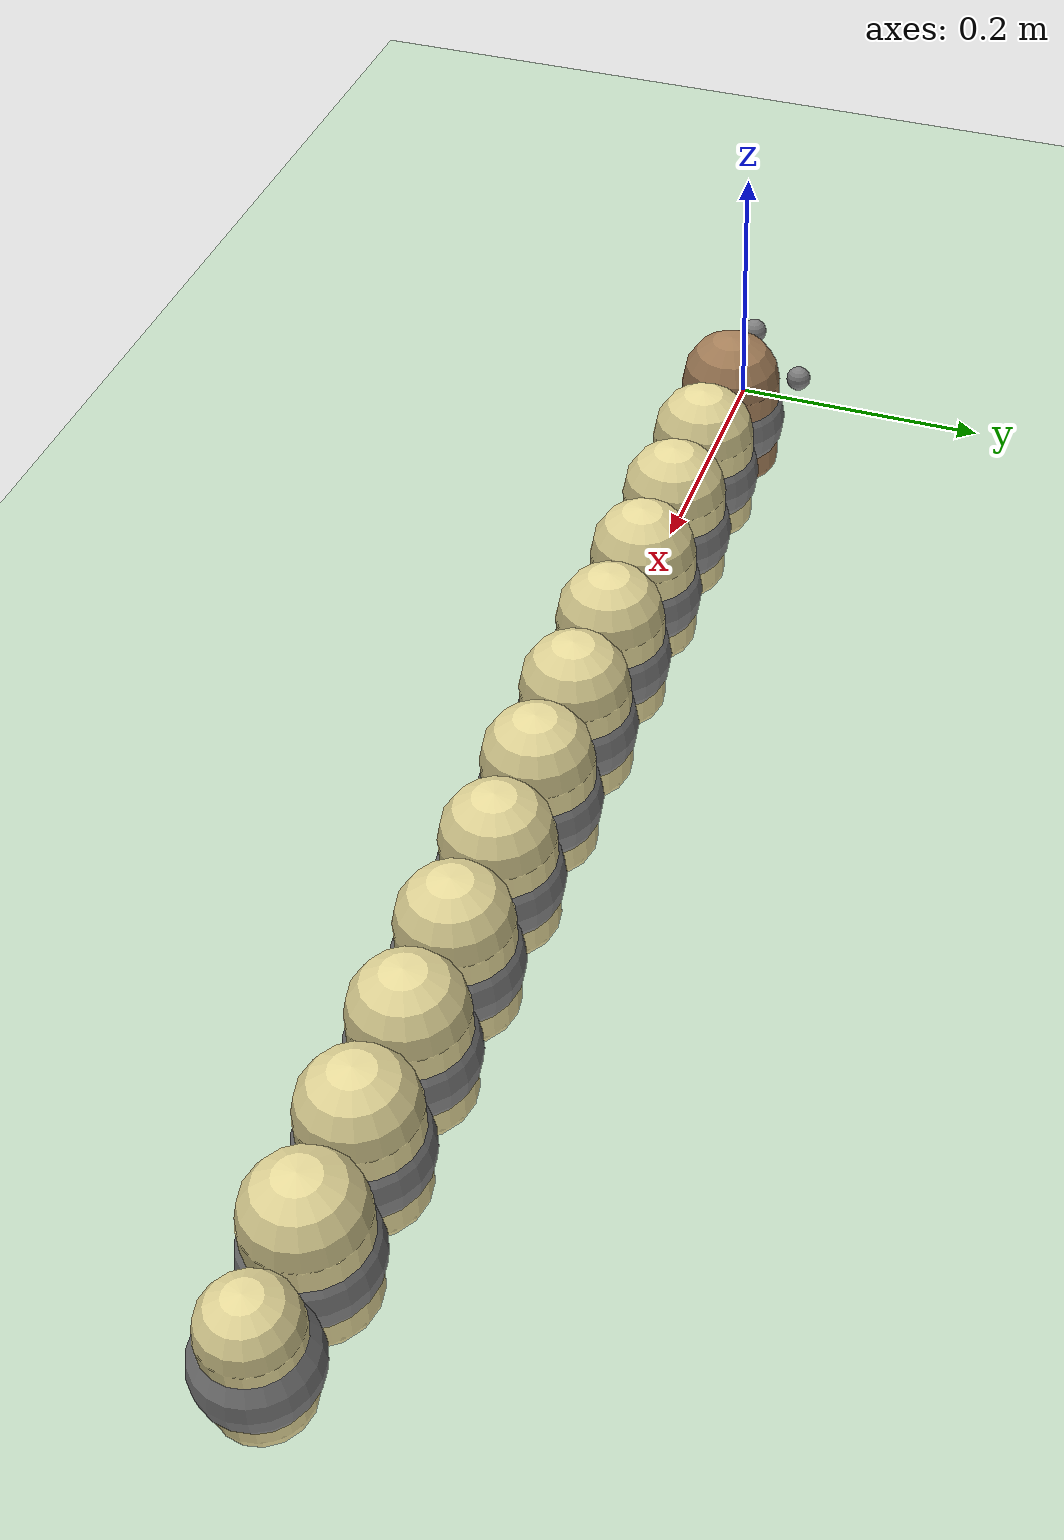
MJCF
<?xml version="1.0" encoding="utf-8"?>
<mujoco model="c_elegans">

  <compiler angle="radian" autolimits="true" />

  <option timestep="0.002" gravity="0 0 -9.8" integrator="implicitfast" density="2000"
    viscosity="0.3">
    <flag contact="enable" energy="disable" />
  </option>

  <default>
    <geom condim="3" friction="0.01 0.8 0.001" solimp="0.9 0.95 0.001" solref="0.005 1" />
    <joint damping="0.05" armature="0.0001" limited="true" />
    <general forcelimited="true" forcerange="-7 7" />
  </default>

  <asset>
    <texture type="2d" name="floor_tex" builtin="checker"
      rgb1="0.82 0.9 0.82" rgb2="0.68 0.78 0.68" width="128" height="128" />
    <material name="floor_mat" texture="floor_tex" texrepeat="5 5" />
    <material name="worm_body" rgba="0.9 0.85 0.6 1" />
    <material name="worm_head" rgba="0.65 0.5 0.35 1" />
  </asset>

  <worldbody>
    <geom name="floor" type="plane" size="50 50 0.1" material="floor_mat"
      pos="0 0 -0.04" condim="3" friction="0.005 0.8 0.001" />

    <!-- Head segment (seg0) at origin; nose points in -x (forward). -->
    <body name="seg0" pos="0 0 0">
      <freejoint name="root" />
      <geom name="seg0_geom" type="capsule"
        size="0.04 0.038"
        pos="0.038 0 0"
        material="worm_head"
        mass="0.023" />
      <site name="nose" pos="-0.038 0 0" size="0.005" />
      <site name="nose_dorsal" pos="-0.030 0  0.040" size="0.010" />
      <site name="nose_ventral" pos="-0.030 0 -0.040" size="0.010" />
      <site name="nose_left" pos="-0.030 -0.040 0" size="0.010" />
      <site name="nose_right" pos="-0.030  0.040 0" size="0.010" />
      <site name="touch_anterior" pos="-0.030 0 0" size="0.005" />
      <site name="seg0_touch" pos="0.038 0 0" size="0.045" />

      <!-- Body extends in +x (tail direction) -->
      <body name="seg1" pos="0.077 0 0">
        <joint name="j01_pitch" type="hinge" axis="0 1 0" range="-1.2 1.2" damping="2.0" />
        <joint name="j01_yaw" type="hinge" axis="0 0 1" range="-1.2 1.2" damping="2.0" />
        <geom name="seg1_geom" type="capsule" size="0.04 0.038" pos="0.038 0 0"
          material="worm_body" mass="0.023" />
        <site name="seg1_touch" pos="0.038 0 0" size="0.045" />

        <body name="seg2" pos="0.077 0 0">
          <joint name="j12_pitch" type="hinge" axis="0 1 0" range="-1.2 1.2" damping="2.0" />
          <joint name="j12_yaw" type="hinge" axis="0 0 1" range="-1.2 1.2" damping="2.0" />
          <geom name="seg2_geom" type="capsule" size="0.04 0.038" pos="0.038 0 0"
            material="worm_body" mass="0.023" />
          <site name="seg2_touch" pos="0.038 0 0" size="0.045" />

          <body name="seg3" pos="0.077 0 0">
            <joint name="j23_pitch" type="hinge" axis="0 1 0" range="-1.2 1.2" damping="2.0" />
            <joint name="j23_yaw" type="hinge" axis="0 0 1" range="-1.2 1.2" damping="2.0" />
            <geom name="seg3_geom" type="capsule" size="0.04 0.038" pos="0.038 0 0"
              material="worm_body" mass="0.023" />
            <site name="seg3_touch" pos="0.038 0 0" size="0.045" />

            <body name="seg4" pos="0.077 0 0">
              <joint name="j34_pitch" type="hinge" axis="0 1 0" range="-1.2 1.2" damping="2.0" />
              <joint name="j34_yaw" type="hinge" axis="0 0 1" range="-1.2 1.2" damping="2.0" />
              <geom name="seg4_geom" type="capsule" size="0.04 0.038" pos="0.038 0 0"
                material="worm_body" mass="0.023" />
              <site name="seg4_touch" pos="0.038 0 0" size="0.045" />

              <body name="seg5" pos="0.077 0 0">
                <joint name="j45_pitch" type="hinge" axis="0 1 0" range="-1.2 1.2" damping="2.0" />
                <joint name="j45_yaw" type="hinge" axis="0 0 1" range="-1.2 1.2" damping="2.0" />
                <geom name="seg5_geom" type="capsule" size="0.04 0.038" pos="0.038 0 0"
                  material="worm_body" mass="0.023" />
                <site name="seg5_touch" pos="0.038 0 0" size="0.045" />

                <body name="seg6" pos="0.077 0 0">
                  <joint name="j56_pitch" type="hinge" axis="0 1 0" range="-1.2 1.2" damping="2.0" />
                  <joint name="j56_yaw" type="hinge" axis="0 0 1" range="-1.2 1.2" damping="2.0" />
                  <geom name="seg6_geom" type="capsule" size="0.04 0.038" pos="0.038 0 0"
                    material="worm_body" mass="0.023" />
                  <site name="seg6_touch" pos="0.038 0 0" size="0.045" />

                  <body name="seg7" pos="0.077 0 0">
                    <joint name="j67_pitch" type="hinge" axis="0 1 0" range="-1.2 1.2" damping="2.0" />
                    <joint name="j67_yaw" type="hinge" axis="0 0 1" range="-1.2 1.2" damping="2.0" />
                    <geom name="seg7_geom" type="capsule" size="0.04 0.038" pos="0.038 0 0"
                      material="worm_body" mass="0.023" />
                    <site name="seg7_touch" pos="0.038 0 0" size="0.045" />

                    <body name="seg8" pos="0.077 0 0">
                      <joint name="j78_pitch" type="hinge" axis="0 1 0" range="-1.2 1.2"
                        damping="2.0" />
                      <joint name="j78_yaw" type="hinge" axis="0 0 1" range="-1.2 1.2" damping="2.0" />
                      <geom name="seg8_geom" type="capsule" size="0.04 0.038" pos="0.038 0 0"
                        material="worm_body" mass="0.023" />
                      <site name="seg8_touch" pos="0.038 0 0" size="0.045" />

                      <body name="seg9" pos="0.077 0 0">
                        <joint name="j89_pitch" type="hinge" axis="0 1 0" range="-1.2 1.2"
                          damping="2.0" />
                        <joint name="j89_yaw" type="hinge" axis="0 0 1" range="-1.2 1.2"
                          damping="2.0" />
                        <geom name="seg9_geom" type="capsule" size="0.04 0.038" pos="0.038 0 0"
                          material="worm_body" mass="0.023" />
                        <site name="seg9_touch" pos="0.038 0 0" size="0.045" />

                        <body name="seg10" pos="0.077 0 0">
                          <joint name="j9a_pitch" type="hinge" axis="0 1 0" range="-1.2 1.2"
                            damping="2.0" />
                          <joint name="j9a_yaw" type="hinge" axis="0 0 1" range="-1.2 1.2"
                            damping="2.0" />
                          <geom name="seg10_geom" type="capsule" size="0.04 0.038" pos="0.038 0 0"
                            material="worm_body" mass="0.023" />
                          <site name="seg10_touch" pos="0.038 0 0" size="0.045" />

                          <body name="seg11" pos="0.077 0 0">
                            <joint name="jab_pitch" type="hinge" axis="0 1 0" range="-1.2 1.2"
                              damping="2.0" />
                            <joint name="jab_yaw" type="hinge" axis="0 0 1" range="-1.2 1.2"
                              damping="2.0" />
                            <geom name="seg11_geom" type="capsule" size="0.04 0.038" pos="0.038 0 0"
                              material="worm_body" mass="0.023" />
                            <site name="seg11_touch" pos="0.038 0 0" size="0.045" />

                            <!-- Tail: slightly tapered -->
                            <body name="seg12" pos="0.077 0 0">
                              <joint name="jbc_pitch" type="hinge" axis="0 1 0" range="-1.2 1.2"
                                damping="2.0" />
                              <joint name="jbc_yaw" type="hinge" axis="0 0 1" range="-1.2 1.2"
                                damping="2.0" />
                              <geom name="seg12_geom" type="capsule" size="0.032 0.035"
                                pos="0.035 0 0"
                                material="worm_body" mass="0.018" />
                              <site name="seg12_touch" pos="0.035 0 0" size="0.040" />
                              <site name="touch_posterior" pos="0.070 0 0" size="0.005" />
                            </body>

                          </body>
                        </body>
                      </body>
                    </body>
                  </body>
                </body>
              </body>
            </body>
          </body>
        </body>
      </body>
    </body><!--
    seg0 -->

  </worldbody>

  <contact>
    <pair geom1="seg0_geom" geom2="floor" condim="6" friction="0.01 1.2 0.005 0.001 0.001" />
    <pair geom1="seg1_geom" geom2="floor" condim="6" friction="0.01 1.2 0.005 0.001 0.001" />
    <pair geom1="seg2_geom" geom2="floor" condim="6" friction="0.01 1.2 0.005 0.001 0.001" />
    <pair geom1="seg3_geom" geom2="floor" condim="6" friction="0.01 1.2 0.005 0.001 0.001" />
    <pair geom1="seg4_geom" geom2="floor" condim="6" friction="0.01 1.2 0.005 0.001 0.001" />
    <pair geom1="seg5_geom" geom2="floor" condim="6" friction="0.01 1.2 0.005 0.001 0.001" />
    <pair geom1="seg6_geom" geom2="floor" condim="6" friction="0.01 1.2 0.005 0.001 0.001" />
    <pair geom1="seg7_geom" geom2="floor" condim="6" friction="0.01 1.2 0.005 0.001 0.001" />
    <pair geom1="seg8_geom" geom2="floor" condim="6" friction="0.01 1.2 0.005 0.001 0.001" />
    <pair geom1="seg9_geom" geom2="floor" condim="6" friction="0.01 1.2 0.005 0.001 0.001" />
    <pair geom1="seg10_geom" geom2="floor" condim="6" friction="0.01 1.2 0.005 0.001 0.001" />
    <pair geom1="seg11_geom" geom2="floor" condim="6" friction="0.01 1.2 0.005 0.001 0.001" />
    <pair geom1="seg12_geom" geom2="floor" condim="6" friction="0.01 1.2 0.005 0.001 0.001" />
  </contact>

  <actuator>
    <general name="muscle_seg1_DL" joint="j01_yaw" gear="1" />
    <general name="muscle_seg1_DR" joint="j01_yaw" gear="1" />
    <general name="muscle_seg1_VL" joint="j01_yaw" gear="-1" />
    <general name="muscle_seg1_VR" joint="j01_yaw" gear="-1" />

    <general name="muscle_seg2_DL" joint="j12_yaw" gear="1" />
    <general name="muscle_seg2_DR" joint="j12_yaw" gear="1" />
    <general name="muscle_seg2_VL" joint="j12_yaw" gear="-1" />
    <general name="muscle_seg2_VR" joint="j12_yaw" gear="-1" />

    <general name="muscle_seg3_DL" joint="j23_yaw" gear="1" />
    <general name="muscle_seg3_DR" joint="j23_yaw" gear="1" />
    <general name="muscle_seg3_VL" joint="j23_yaw" gear="-1" />
    <general name="muscle_seg3_VR" joint="j23_yaw" gear="-1" />

    <general name="muscle_seg4_DL" joint="j34_yaw" gear="1" />
    <general name="muscle_seg4_DR" joint="j34_yaw" gear="1" />
    <general name="muscle_seg4_VL" joint="j34_yaw" gear="-1" />
    <general name="muscle_seg4_VR" joint="j34_yaw" gear="-1" />

    <general name="muscle_seg5_DL" joint="j45_yaw" gear="1" />
    <general name="muscle_seg5_DR" joint="j45_yaw" gear="1" />
    <general name="muscle_seg5_VL" joint="j45_yaw" gear="-1" />
    <general name="muscle_seg5_VR" joint="j45_yaw" gear="-1" />

    <general name="muscle_seg6_DL" joint="j56_yaw" gear="1" />
    <general name="muscle_seg6_DR" joint="j56_yaw" gear="1" />
    <general name="muscle_seg6_VL" joint="j56_yaw" gear="-1" />
    <general name="muscle_seg6_VR" joint="j56_yaw" gear="-1" />

    <general name="muscle_seg7_DL" joint="j67_yaw" gear="1" />
    <general name="muscle_seg7_DR" joint="j67_yaw" gear="1" />
    <general name="muscle_seg7_VL" joint="j67_yaw" gear="-1" />
    <general name="muscle_seg7_VR" joint="j67_yaw" gear="-1" />

    <general name="muscle_seg8_DL" joint="j78_yaw" gear="1" />
    <general name="muscle_seg8_DR" joint="j78_yaw" gear="1" />
    <general name="muscle_seg8_VL" joint="j78_yaw" gear="-1" />
    <general name="muscle_seg8_VR" joint="j78_yaw" gear="-1" />

    <general name="muscle_seg9_DL" joint="j89_yaw" gear="1" />
    <general name="muscle_seg9_DR" joint="j89_yaw" gear="1" />
    <general name="muscle_seg9_VL" joint="j89_yaw" gear="-1" />
    <general name="muscle_seg9_VR" joint="j89_yaw" gear="-1" />

    <general name="muscle_seg10_DL" joint="j9a_yaw" gear="1" />
    <general name="muscle_seg10_DR" joint="j9a_yaw" gear="1" />
    <general name="muscle_seg10_VL" joint="j9a_yaw" gear="-1" />
    <general name="muscle_seg10_VR" joint="j9a_yaw" gear="-1" />

    <general name="muscle_seg11_DL" joint="jab_yaw" gear="1" />
    <general name="muscle_seg11_DR" joint="jab_yaw" gear="1" />
    <general name="muscle_seg11_VL" joint="jab_yaw" gear="-1" />
    <general name="muscle_seg11_VR" joint="jab_yaw" gear="-1" />

    <general name="muscle_seg12_DL" joint="jbc_yaw" gear="1" />
    <general name="muscle_seg12_DR" joint="jbc_yaw" gear="1" />
    <general name="muscle_seg12_VL" joint="jbc_yaw" gear="-1" />
    <general name="muscle_seg12_VR" joint="jbc_yaw" gear="-1" />
  </actuator>

  <sensor>
    <jointpos name="prop_j01_pitch" joint="j01_pitch" />
    <jointpos name="prop_j12_pitch" joint="j12_pitch" />
    <jointpos name="prop_j23_pitch" joint="j23_pitch" />
    <jointpos name="prop_j34_pitch" joint="j34_pitch" />
    <jointpos name="prop_j45_pitch" joint="j45_pitch" />
    <jointpos name="prop_j56_pitch" joint="j56_pitch" />
    <jointpos name="prop_j67_pitch" joint="j67_pitch" />
    <jointpos name="prop_j78_pitch" joint="j78_pitch" />
    <jointpos name="prop_j89_pitch" joint="j89_pitch" />
    <jointpos name="prop_j9a_pitch" joint="j9a_pitch" />
    <jointpos name="prop_jab_pitch" joint="jab_pitch" />
    <jointpos name="prop_jbc_pitch" joint="jbc_pitch" />
    <jointvel name="vel_j01_pitch" joint="j01_pitch" />
    <jointvel name="vel_j12_pitch" joint="j12_pitch" />
    <jointvel name="vel_j23_pitch" joint="j23_pitch" />
    <jointvel name="vel_j34_pitch" joint="j34_pitch" />
    <jointvel name="vel_j45_pitch" joint="j45_pitch" />
    <jointvel name="vel_j56_pitch" joint="j56_pitch" />
    <touch name="touch_nose_sensor" site="nose" />
    <touch name="touch_nose_dorsal" site="nose_dorsal" />
    <touch name="touch_nose_ventral" site="nose_ventral" />
    <touch name="touch_nose_left" site="nose_left" />
    <touch name="touch_nose_right" site="nose_right" />
    <touch name="touch_ant_sensor" site="touch_anterior" />
    <touch name="touch_post_sensor" site="touch_posterior" />
    <touch name="touch_seg0_sensor" site="seg0_touch" />
    <touch name="touch_seg1_sensor" site="seg1_touch" />
    <touch name="touch_seg2_sensor" site="seg2_touch" />
    <touch name="touch_seg3_sensor" site="seg3_touch" />
    <touch name="touch_seg4_sensor" site="seg4_touch" />
    <touch name="touch_seg5_sensor" site="seg5_touch" />
    <touch name="touch_seg6_sensor" site="seg6_touch" />
    <touch name="touch_seg7_sensor" site="seg7_touch" />
    <touch name="touch_seg8_sensor" site="seg8_touch" />
    <touch name="touch_seg9_sensor" site="seg9_touch" />
    <touch name="touch_seg10_sensor" site="seg10_touch" />
    <touch name="touch_seg11_sensor" site="seg11_touch" />
    <touch name="touch_seg12_sensor" site="seg12_touch" />
    <framepos name="head_pos" objtype="site" objname="nose" />
    <framexaxis name="head_xaxis" objtype="site" objname="nose" />
  </sensor>

</mujoco>
